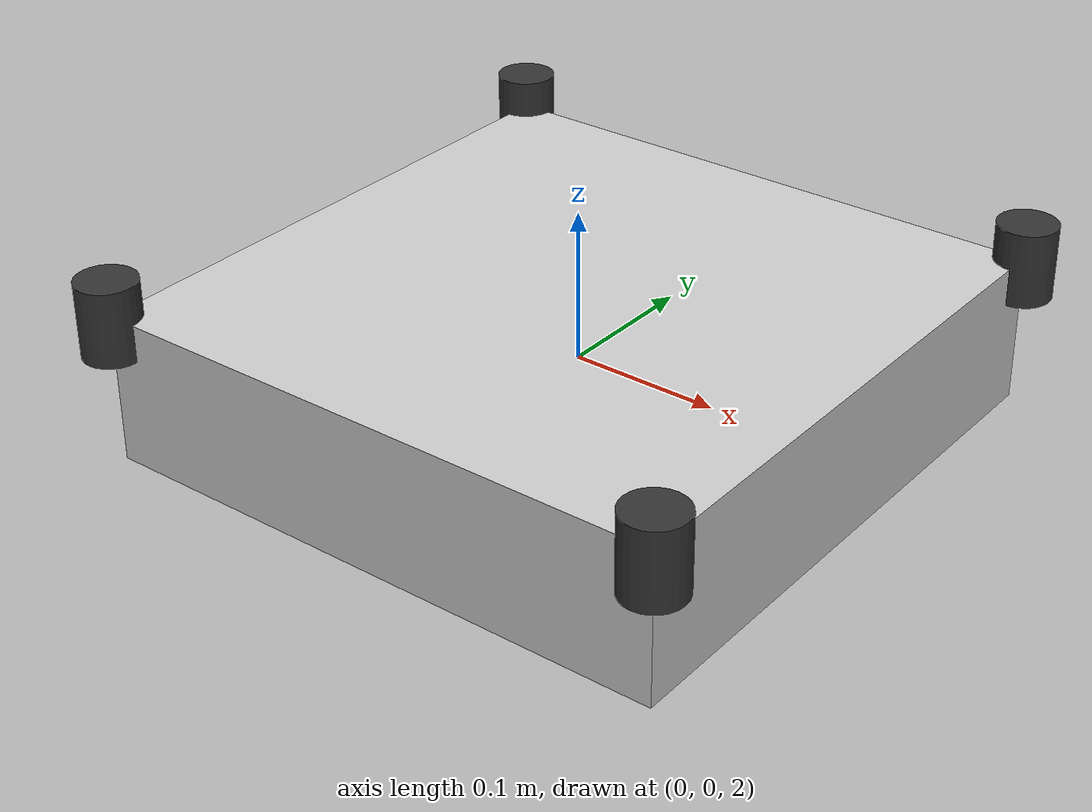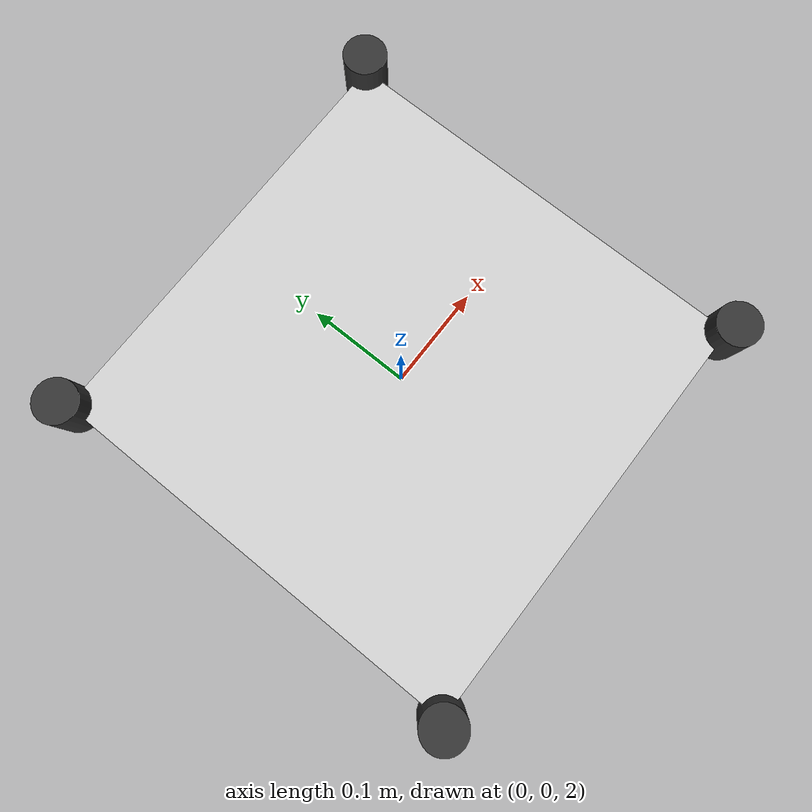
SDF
<?xml version="1.0"?>
<sdf version="1.6">
  <world name="empty_world">
    <!-- Physics settings -->
    <physics name="default_physics" default="0" type="ode">
      <max_step_size>0.001</max_step_size>
      <real_time_factor>1</real_time_factor>
      <real_time_update_rate>1000</real_time_update_rate>
      <gravity>0 0 -9.81</gravity>
    </physics>

    <!-- Lighting -->
    <include>
      <uri>model://sun</uri>
    </include>

    <!-- Ground plane -->
    <include>
      <uri>model://ground_plane</uri>
    </include>

    <!-- Spawn quadcopter -->
    <include>
      <uri>model://quadcopter</uri>
      <pose>0 0 2 0 0 0</pose>
    </include>

    <!-- GUI settings -->
    <gui fullscreen='0'>
      <camera name='user_camera'>
        <pose>5 -5 3 0 0.785 0.785</pose>
        <view_controller>orbit</view_controller>
        <projection_type>perspective</projection_type>
      </camera>
    </gui>

    <!-- Plugin for ROS 2 bridge -->
    <plugin name="gazebo_ros_state" filename="libgazebo_ros_state.so">
      <ros>
        <namespace>/gazebo</namespace>
        <remapping>model_states:=model_states</remapping>
        <remapping>link_states:=link_states</remapping>
      </ros>
    </plugin>

    <!-- Plugin for ROS 2 control -->
    <plugin name="gazebo_ros_control" filename="libgazebo_ros_control.so">
      <robotNamespace>/quadcopter</robotNamespace>
      <robotParam>robot_description</robotParam>
    </plugin>
  </world>
</sdf>

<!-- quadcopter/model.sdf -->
<sdf version="1.6">
  <model name="quadcopter">
    <link name="base_link">
      <pose>0 0 0 0 0 0</pose>
      <inertial>
        <mass>1.5</mass>
        <inertia>
          <ixx>0.029125</ixx>
          <ixy>0</ixy>
          <ixz>0</ixz>
          <iyy>0.029125</iyy>
          <iyz>0</iyz>
          <izz>0.055225</izz>
        </inertia>
      </inertial>
      <collision name="collision">
        <geometry>
          <box>
            <size>0.4 0.4 0.1</size>
          </box>
        </geometry>
      </collision>
      <visual name="visual">
        <geometry>
          <box>
            <size>0.4 0.4 0.1</size>
          </box>
        </geometry>
        <material>
          <ambient>0.8 0.8 0.8 1</ambient>
          <diffuse>0.8 0.8 0.8 1</diffuse>
        </material>
      </visual>
    </link>

    <!-- Front Left Motor -->
    <link name="motor_fl">
      <pose>0.2 0.2 0.05 0 0 0</pose>
      <inertial>
        <mass>0.1</mass>
        <inertia>
          <ixx>0.001</ixx>
          <ixy>0</ixy>
          <ixz>0</ixz>
          <iyy>0.001</iyy>
          <iyz>0</iyz>
          <izz>0.001</izz>
        </inertia>
      </inertial>
      <collision name="collision">
        <geometry>
          <cylinder>
            <radius>0.02</radius>
            <length>0.05</length>
          </cylinder>
        </geometry>
      </collision>
      <visual name="visual">
        <geometry>
          <cylinder>
            <radius>0.02</radius>
            <length>0.05</length>
          </cylinder>
        </geometry>
        <material>
          <ambient>0.2 0.2 0.2 1</ambient>
          <diffuse>0.2 0.2 0.2 1</diffuse>
        </material>
      </visual>
    </link>

    <!-- Front Right Motor -->
    <link name="motor_fr">
      <pose>-0.2 0.2 0.05 0 0 0</pose>
      <inertial>
        <mass>0.1</mass>
        <inertia>
          <ixx>0.001</ixx>
          <ixy>0</ixy>
          <ixz>0</ixz>
          <iyy>0.001</iyy>
          <iyz>0</iyz>
          <izz>0.001</izz>
        </inertia>
      </inertial>
      <collision name="collision">
        <geometry>
          <cylinder>
            <radius>0.02</radius>
            <length>0.05</length>
          </cylinder>
        </geometry>
      </collision>
      <visual name="visual">
        <geometry>
          <cylinder>
            <radius>0.02</radius>
            <length>0.05</length>
          </cylinder>
        </geometry>
        <material>
          <ambient>0.2 0.2 0.2 1</ambient>
          <diffuse>0.2 0.2 0.2 1</diffuse>
        </material>
      </visual>
    </link>

    <!-- Rear Left Motor -->
    <link name="motor_rl">
      <pose>0.2 -0.2 0.05 0 0 0</pose>
      <inertial>
        <mass>0.1</mass>
        <inertia>
          <ixx>0.001</ixx>
          <ixy>0</ixy>
          <ixz>0</ixz>
          <iyy>0.001</iyy>
          <iyz>0</iyz>
          <izz>0.001</izz>
        </inertia>
      </inertial>
      <collision name="collision">
        <geometry>
          <cylinder>
            <radius>0.02</radius>
            <length>0.05</length>
          </cylinder>
        </geometry>
      </collision>
      <visual name="visual">
        <geometry>
          <cylinder>
            <radius>0.02</radius>
            <length>0.05</length>
          </cylinder>
        </geometry>
        <material>
          <ambient>0.2 0.2 0.2 1</ambient>
          <diffuse>0.2 0.2 0.2 1</diffuse>
        </material>
      </visual>
    </link>

    <!-- Rear Right Motor -->
    <link name="motor_rr">
      <pose>-0.2 -0.2 0.05 0 0 0</pose>
      <inertial>
        <mass>0.1</mass>
        <inertia>
          <ixx>0.001</ixx>
          <ixy>0</ixy>
          <ixz>0</ixz>
          <iyy>0.001</iyy>
          <iyz>0</iyz>
          <izz>0.001</izz>
        </inertia>
      </inertial>
      <collision name="collision">
        <geometry>
          <cylinder>
            <radius>0.02</radius>
            <length>0.05</length>
          </cylinder>
        </geometry>
      </collision>
      <visual name="visual">
        <geometry>
          <cylinder>
            <radius>0.02</radius>
            <length>0.05</length>
          </cylinder>
        </geometry>
        <material>
          <ambient>0.2 0.2 0.2 1</ambient>
          <diffuse>0.2 0.2 0.2 1</diffuse>
        </material>
      </visual>
    </link>

    <!-- IMU Sensor -->
    <link name="imu_link">
      <pose>0 0 0.05 0 0 0</pose>
      <sensor name="imu_sensor" type="imu">
        <always_on>true</always_on>
        <update_rate>100</update_rate>
        <visualize>true</visualize>
        <topic>quadcopter/sensors/imu</topic>
        <frame_name>imu_link</frame_name>
        <ros>
          <namespace>/quadcopter</namespace>
          <remapping>sensors/imu:=sensors/imu</remapping>
        </ros>
      </sensor>
    </link>

    <!-- GPS Sensor -->
    <link name="gps_link">
      <pose>0 0 0.05 0 0 0</pose>
      <sensor name="gps_sensor" type="gps">
        <always_on>true</always_on>
        <update_rate>10</update_rate>
        <visualize>true</visualize>
        <topic>quadcopter/sensors/gps</topic>
        <frame_name>gps_link</frame_name>
        <ros>
          <namespace>/quadcopter</namespace>
          <remapping>sensors/gps:=sensors/gps</remapping>
        </ros>
      </sensor>
    </link>

    <!-- Altitude Sensor -->
    <link name="altitude_link">
      <pose>0 0 -0.05 0 0 0</pose>
      <sensor name="altitude_sensor" type="ray">
        <always_on>true</always_on>
        <update_rate>50</update_rate>
        <visualize>true</visualize>
        <topic>quadcopter/sensors/altitude</topic>
        <frame_name>altitude_link</frame_name>
        <ray>
          <scan>
            <horizontal>
              <samples>1</samples>
              <resolution>1</resolution>
              <min_angle>0</min_angle>
              <max_angle>0</max_angle>
            </horizontal>
          </scan>
          <range>
            <min>0.1</min>
            <max>50</max>
            <resolution>0.01</resolution>
          </range>
        </ray>
        <ros>
          <namespace>/quadcopter</namespace>
          <remapping>sensors/altitude:=sensors/altitude</remapping>
        </ros>
      </sensor>
    </link>

    <!-- Joints -->
    <joint name="motor_fl_joint" type="revolute">
      <parent>base_link</parent>
      <child>motor_fl</child>
      <axis>
        <xyz>0 0 1</xyz>
      </axis>
    </joint>

    <joint name="motor_fr_joint" type="revolute">
      <parent>base_link</parent>
      <child>motor_fr</child>
      <axis>
        <xyz>0 0 1</xyz>
      </axis>
    </joint>

    <joint name="motor_rl_joint" type="revolute">
      <parent>base_link</parent>
      <child>motor_rl</child>
      <axis>
        <xyz>0 0 1</xyz>
      </axis>
    </joint>

    <joint name="motor_rr_joint" type="revolute">
      <parent>base_link</parent>
      <child>motor_rr</child>
      <axis>
        <xyz>0 0 1</xyz>
      </axis>
    </joint>

    <joint name="imu_joint" type="fixed">
      <parent>base_link</parent>
      <child>imu_link</child>
    </joint>

    <joint name="gps_joint" type="fixed">
      <parent>base_link</parent>
      <child>gps_link</child>
    </joint>

    <joint name="altitude_joint" type="fixed">
      <parent>base_link</parent>
      <child>altitude_link</child>
    </joint>

    <!-- Plugin for quadcopter dynamics -->
    <plugin name="quadcopter_plugin" filename="libgazebo_ros_planar_move.so">
      <commandTopic>quadcopter/control/velocity</commandTopic>
      <odometryTopic>quadcopter/state/odometry</odometryTopic>
      <odometryFrame>odom</odometryFrame>
      <odometryRate>20</odometryRate>
      <robotBaseFrame>base_link</robotBaseFrame>
    </plugin>

    <!-- Plugin for motor control -->
    <plugin name="motor_controller" filename="libgazebo_ros_force.so">
      <bodyName>base_link</bodyName>
      <topicName>quadcopter/control/motors</topicName>
    </plugin>
  </model>
</sdf>
